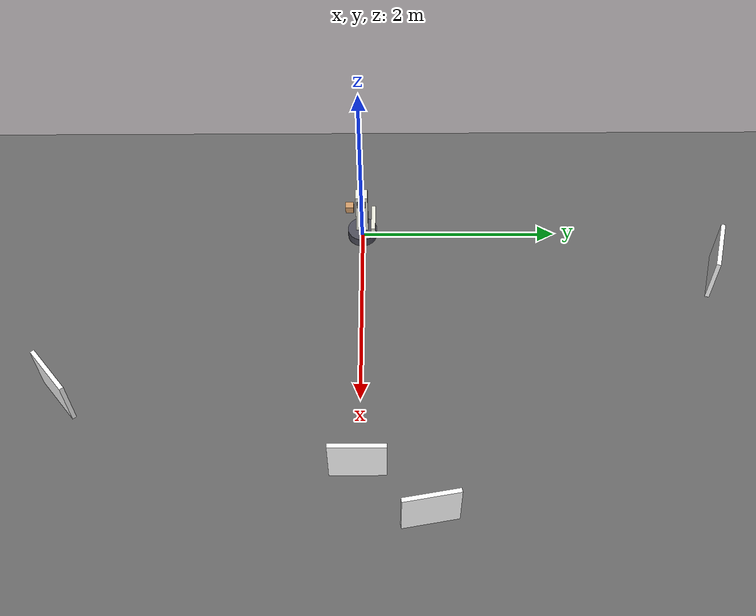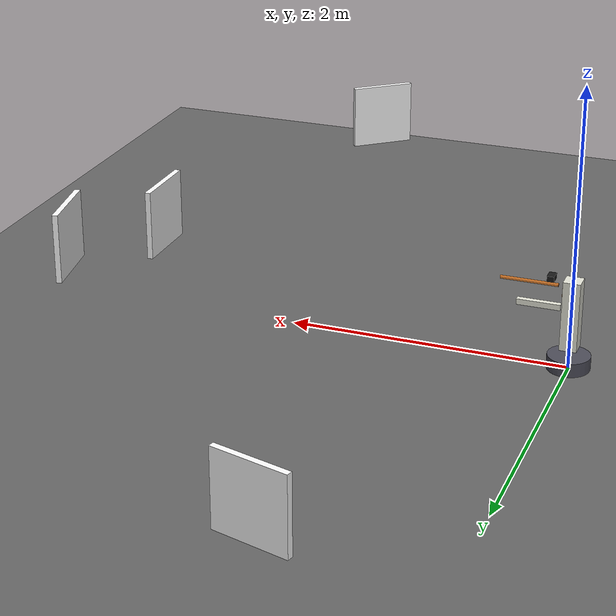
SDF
<?xml version="1.0" ?>
<sdf version="1.10">
  <world name="archer_vision_world">

    <physics name="default" type="ode">
      <max_step_size>0.001</max_step_size>
      <real_time_factor>1.0</real_time_factor>
    </physics>
    <plugin filename="gz-sim-physics-system"
            name="gz::sim::systems::Physics"/>
    <!-- Lets the arrow_launcher node apply a one-shot impulse to launch the arrow -->
    <plugin filename="gz-sim-apply-link-wrench-system"
            name="gz::sim::systems::ApplyLinkWrench"/>
    <plugin filename="gz-sim-user-commands-system"
            name="gz::sim::systems::UserCommands"/>
    <plugin filename="gz-sim-scene-broadcaster-system"
            name="gz::sim::systems::SceneBroadcaster"/>
    <!-- Needed to actually render the camera sensor -->
    <plugin filename="gz-sim-sensors-system"
            name="gz::sim::systems::Sensors">
      <!-- ogre2 renders a blank gradient off-screen on this RTX 5070 / driver
           595; the legacy ogre engine is the standard fallback. -->
      <render_engine>ogre</render_engine>
    </plugin>

    <light type="directional" name="sun">
      <cast_shadows>true</cast_shadows>
      <pose>0 0 10 0 0 0</pose>
      <diffuse>0.9 0.9 0.9 1</diffuse>
      <specular>0.2 0.2 0.2 1</specular>
      <direction>-0.5 0.1 -0.9</direction>
    </light>

    <model name="ground_plane">
      <static>true</static>
      <link name="link">
        <collision name="collision">
          <geometry><plane><normal>0 0 1</normal><size>40 40</size></plane></geometry>
        </collision>
        <visual name="visual">
          <geometry><plane><normal>0 0 1</normal><size>40 40</size></plane></geometry>
          <material><ambient>0.3 0.3 0.3 1</ambient><diffuse>0.4 0.4 0.4 1</diffuse></material>
        </visual>
      </link>
    </model>

    <!-- ============================ THE ARCHER ============================ -->
    <model name="archer">
      <pose>0 0 0 0 0 0</pose>

      <joint name="world_fix" type="fixed">
        <parent>world</parent>
        <child>base_link</child>
      </joint>

      <link name="base_link">
        <pose>0 0 0.05 0 0 0</pose>
        <inertial>
          <mass>5.0</mass>
          <inertia><ixx>0.04</ixx><iyy>0.04</iyy><izz>0.06</izz>
                   <ixy>0</ixy><ixz>0</ixz><iyz>0</iyz></inertia>
        </inertial>
        <collision name="col">
          <geometry><cylinder><radius>0.15</radius><length>0.1</length></cylinder></geometry>
        </collision>
        <visual name="vis">
          <geometry><cylinder><radius>0.15</radius><length>0.1</length></cylinder></geometry>
          <material><ambient>0.2 0.2 0.25 1</ambient><diffuse>0.3 0.3 0.35 1</diffuse></material>
        </visual>
      </link>

      <link name="body">
        <pose>0 0 0.4 0 0 0</pose>
        <inertial>
          <mass>1.0</mass>
          <inertia><ixx>0.02</ixx><iyy>0.02</iyy><izz>0.004</izz>
                   <ixy>0</ixy><ixz>0</ixz><iyz>0</iyz></inertia>
        </inertial>
        <collision name="col">
          <geometry><box><size>0.12 0.12 0.5</size></box></geometry>
        </collision>
        <visual name="vis">
          <geometry><box><size>0.12 0.12 0.5</size></box></geometry>
          <material><ambient>0.85 0.85 0.8 1</ambient><diffuse>0.9 0.9 0.85 1</diffuse></material>
        </visual>
      </link>
      <joint name="base_joint" type="revolute">
        <parent>base_link</parent>
        <child>body</child>
        <axis>
          <xyz>0 0 1</xyz>
          <limit><lower>-1.57</lower><upper>1.57</upper></limit>
          <dynamics><damping>0.5</damping></dynamics>
        </axis>
      </joint>

      <link name="bow_arm">
        <pose>0.2 0.12 0.5 0 0 0</pose>
        <inertial>
          <mass>0.2</mass>
          <inertia><ixx>0.001</ixx><iyy>0.003</iyy><izz>0.003</izz>
                   <ixy>0</ixy><ixz>0</ixz><iyz>0</iyz></inertia>
        </inertial>
        <collision name="col">
          <geometry><box><size>0.3 0.04 0.04</size></box></geometry>
        </collision>
        <visual name="vis">
          <geometry><box><size>0.3 0.04 0.04</size></box></geometry>
          <material><ambient>0.85 0.85 0.8 1</ambient><diffuse>0.9 0.9 0.85 1</diffuse></material>
        </visual>
      </link>
      <joint name="bow_fix" type="fixed">
        <parent>body</parent>
        <child>bow_arm</child>
      </joint>

      <link name="draw_hand">
        <pose>0.05 -0.12 0.5 0 0 0</pose>
        <inertial>
          <mass>0.2</mass>
          <inertia><ixx>0.0002</ixx><iyy>0.0002</iyy><izz>0.0002</izz>
                   <ixy>0</ixy><ixz>0</ixz><iyz>0</iyz></inertia>
        </inertial>
        <collision name="col">
          <geometry><box><size>0.08 0.08 0.08</size></box></geometry>
        </collision>
        <visual name="vis">
          <geometry><box><size>0.08 0.08 0.08</size></box></geometry>
          <material><ambient>0.7 0.5 0.3 1</ambient><diffuse>0.8 0.6 0.4 1</diffuse></material>
        </visual>
      </link>
      <joint name="draw_joint" type="prismatic">
        <parent>body</parent>
        <child>draw_hand</child>
        <axis>
          <xyz>1 0 0</xyz>
          <limit><lower>-0.2</lower><upper>0.0</upper></limit>
          <dynamics><damping>5.0</damping></dynamics>
        </axis>
      </joint>

      <!-- Camera "eye": mounted on the BODY (turret), so it sweeps when the
           base rotates. Sits in front of and above the torso, looking +X. -->
      <link name="camera_link">
        <pose>0.15 0 0.65 0 0 0</pose>
        <inertial>
          <mass>0.05</mass>
          <inertia><ixx>1e-5</ixx><iyy>1e-5</iyy><izz>1e-5</izz>
                   <ixy>0</ixy><ixz>0</ixz><iyz>0</iyz></inertia>
        </inertial>
        <visual name="vis">
          <geometry><box><size>0.05 0.08 0.04</size></box></geometry>
          <material><ambient>0.05 0.05 0.05 1</ambient><diffuse>0.1 0.1 0.1 1</diffuse></material>
        </visual>
        <sensor name="eye" type="camera">
          <topic>/archer/camera</topic>
          <update_rate>15</update_rate>
          <always_on>1</always_on>
          <camera>
            <horizontal_fov>1.2</horizontal_fov>
            <image><width>640</width><height>480</height></image>
            <clip><near>0.05</near><far>100</far></clip>
          </camera>
        </sensor>
      </link>
      <joint name="camera_fix" type="fixed">
        <parent>body</parent>
        <child>camera_link</child>
      </joint>

      <plugin filename="gz-sim-joint-position-controller-system"
              name="gz::sim::systems::JointPositionController">
        <joint_name>base_joint</joint_name>
        <topic>/archer/base_cmd</topic>
        <p_gain>30</p_gain><i_gain>0.1</i_gain><d_gain>3</d_gain>
      </plugin>
      <plugin filename="gz-sim-joint-position-controller-system"
              name="gz::sim::systems::JointPositionController">
        <joint_name>draw_joint</joint_name>
        <topic>/archer/draw_cmd</topic>
        <p_gain>80</p_gain><i_gain>0.1</i_gain><d_gain>8</d_gain>
      </plugin>
    </model>

    <!-- ===================== APRILTAG TARGET (+75 deg) ==================== -->
    <model name="target">
      <static>true</static>
      <pose>0.906 3.381 0.7 0 0 -1.833</pose>
      <link name="link">
        <collision name="col">
          <geometry><box><size>0.04 0.5 0.5</size></box></geometry>
        </collision>
        <visual name="vis">
          <geometry><box><size>0.04 0.5 0.5</size></box></geometry>
          <material>
            <ambient>1 1 1 1</ambient>
            <diffuse>1 1 1 1</diffuse>
            <pbr>
              <metal>
                <albedo_map>apriltag_36h11_id0.png</albedo_map>
                <metalness>0.0</metalness>
                <roughness>1.0</roughness>
              </metal>
            </pbr>
          </material>
        </visual>
      </link>
    </model>

    <!-- Second target: tag id1 at +10 deg -->
    <model name="target2">
      <static>true</static>
      <pose>3.447 0.608 0.7 0 0 3.3161</pose>
      <link name="link">
        <collision name="col">
          <geometry><box><size>0.04 0.5 0.5</size></box></geometry>
        </collision>
        <visual name="vis">
          <geometry><box><size>0.04 0.5 0.5</size></box></geometry>
          <material>
            <ambient>1 1 1 1</ambient>
            <diffuse>1 1 1 1</diffuse>
            <pbr><metal>
              <albedo_map>apriltag_36h11_id1.png</albedo_map>
              <metalness>0.0</metalness>
              <roughness>1.0</roughness>
            </metal></pbr>
          </material>
        </visual>
      </link>
    </model>

    <!-- Third target: tag id2 at -50 deg -->
    <model name="target3">
      <static>true</static>
      <pose>2.250 -2.681 0.7 0 0 2.269</pose>
      <link name="link">
        <collision name="col">
          <geometry><box><size>0.04 0.5 0.5</size></box></geometry>
        </collision>
        <visual name="vis">
          <geometry><box><size>0.04 0.5 0.5</size></box></geometry>
          <material>
            <ambient>1 1 1 1</ambient>
            <diffuse>1 1 1 1</diffuse>
            <pbr><metal>
              <albedo_map>apriltag_36h11_id2.png</albedo_map>
              <metalness>0.0</metalness>
              <roughness>1.0</roughness>
            </metal></pbr>
          </material>
        </visual>
      </link>
    </model>

    <model name="mover_target">
      <pose>3.0 0 0.7 0 0 3.14159</pose>
      <link name="panel">
        <inertial>
          <mass>0.3</mass>
          <inertia><ixx>0.01</ixx><iyy>0.01</iyy><izz>0.01</izz>
                   <ixy>0</ixy><ixz>0</ixz><iyz>0</iyz></inertia>
        </inertial>
        <collision name="col">
          <geometry><box><size>0.04 0.5 0.5</size></box></geometry>
        </collision>
        <visual name="vis">
          <geometry><box><size>0.04 0.5 0.5</size></box></geometry>
          <material>
            <ambient>1 1 1 1</ambient>
            <diffuse>1 1 1 1</diffuse>
            <pbr><metal>
              <albedo_map>apriltag_36h11_id3.png</albedo_map>
              <metalness>0.0</metalness>
              <roughness>1.0</roughness>
            </metal></pbr>
          </material>
        </visual>
      </link>
      <joint name="slide" type="prismatic">
        <parent>world</parent>
        <child>panel</child>
        <axis>
          <xyz>0 1 0</xyz>
          <limit><lower>-2.0</lower><upper>2.0</upper></limit>
          <dynamics><damping>10.0</damping></dynamics>
        </axis>
      </joint>
      <plugin filename="gz-sim-joint-position-controller-system"
              name="gz::sim::systems::JointPositionController">
        <joint_name>slide</joint_name>
        <topic>/mover/slide_cmd</topic>
        <p_gain>100</p_gain><i_gain>0.1</i_gain><d_gain>20</d_gain>
      </plugin>
    </model>

    <model name="arrow">
      <pose>0.3 0 0.6 0 0 0</pose>
      <link name="shaft">
        <inertial>
          <mass>0.02</mass>
          <inertia><ixx>1e-6</ixx><iyy>2.7e-4</iyy><izz>2.7e-4</izz>
                   <ixy>0</ixy><ixz>0</ixz><iyz>0</iyz></inertia>
        </inertial>
        <collision name="c">
          <pose>0 0 0 0 1.5708 0</pose>
          <geometry><cylinder><radius>0.01</radius><length>0.4</length></cylinder></geometry>
        </collision>
        <visual name="v">
          <pose>0 0 0 0 1.5708 0</pose>
          <geometry><cylinder><radius>0.012</radius><length>0.4</length></cylinder></geometry>
          <material><ambient>0.6 0.3 0.1 1</ambient><diffuse>0.8 0.45 0.15 1</diffuse></material>
        </visual>
      </link>
    </model>

  </world>
</sdf>
